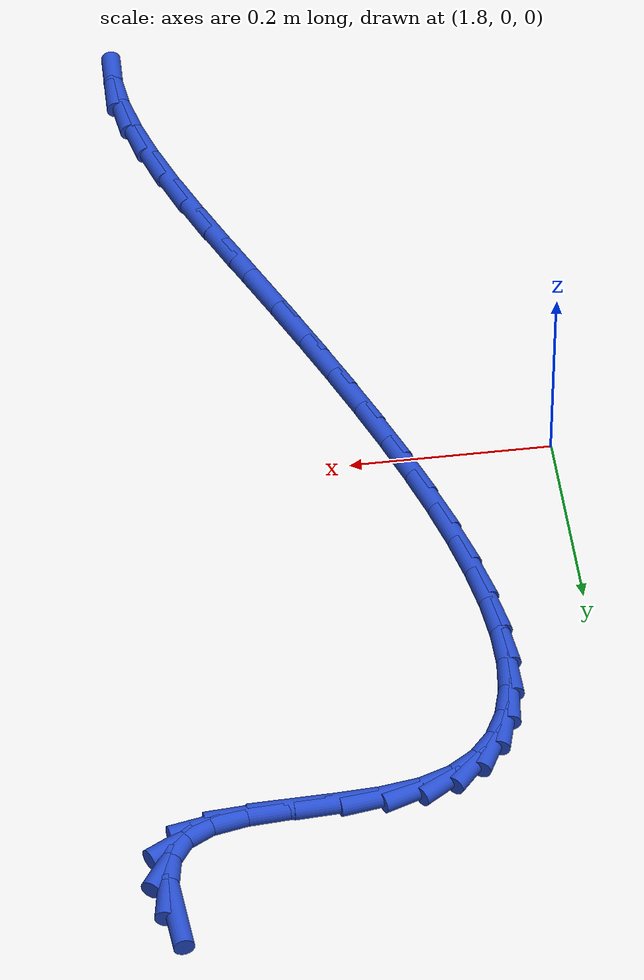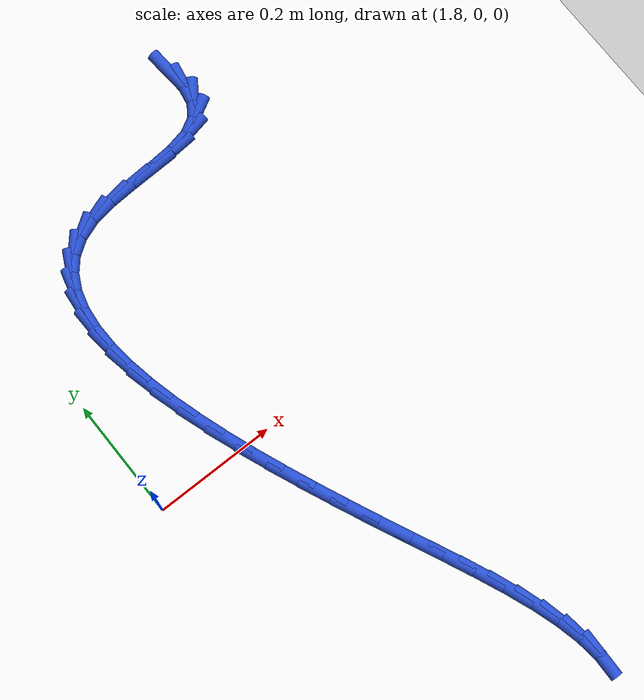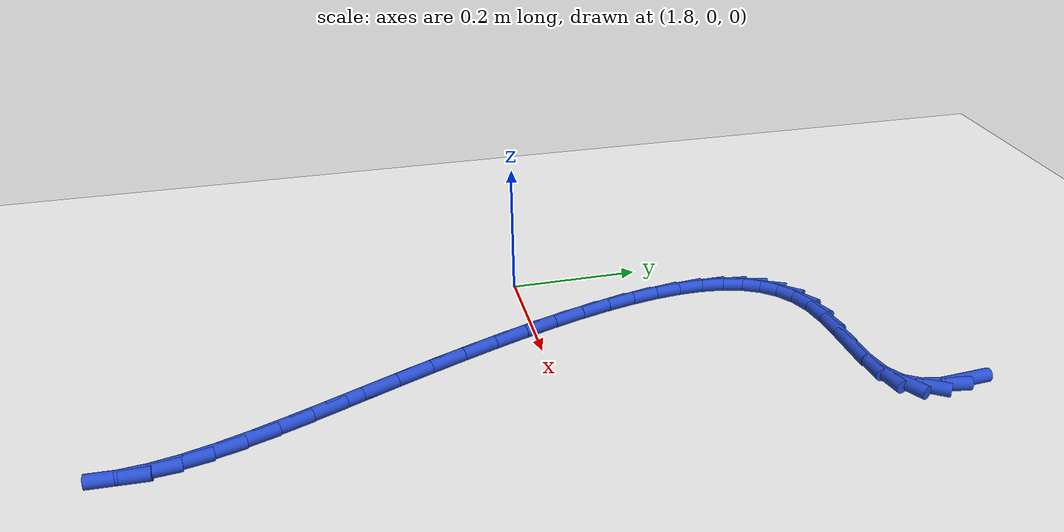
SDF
<sdf version="1.6">
 <world name="default">
  <model name="ground_plane">
   <static>1</static>
   <link name="link">
    <collision name="collision">
     <geometry><plane><normal>0 0 1</normal><size>100 100</size></plane></geometry>
     <surface><friction><ode><mu>100</mu><mu2>50</mu2></ode></friction></surface>
    </collision>
    <visual name="visual">
     <cast_shadows>0</cast_shadows>
     <geometry><plane><normal>0 0 1</normal><size>100 100</size></plane></geometry>
     <material>
      <script><uri>file://media/materials/scripts/gazebo.material</uri><name>Gazebo/WhiteGlow</name></script>
     </material>
    </visual>
   </link>
  </model>
  <model name="line">
   <link name="link_89">
    <pose>2.2319954554988297 0.5465699969368176 0.01 0 1.57 -1.4904532015679872</pose>
    <collision name="collision">
     <geometry><cylinder><radius>0.01</radius><length>0.08</length></cylinder></geometry>
    </collision>
    <visual name="visual">
     <material>
      <script><name>Gazebo/Blue</name><uri>file://media/materials/scripts/gazebo.material</uri></script>
     </material>
     <geometry><cylinder><radius>0.01</radius><length>0.08</length></cylinder></geometry>
    </visual>
   </link>
   <link name="link_90">
    <pose>2.2347788851365133 0.5120002932850212 0.01 0 1.57 1.3860549257990797</pose>
    <collision name="collision">
     <geometry><cylinder><radius>0.01</radius><length>0.08</length></cylinder></geometry>
    </collision>
    <visual name="visual">
     <material>
      <script><name>Gazebo/Blue</name><uri>file://media/materials/scripts/gazebo.material</uri></script>
     </material>
     <geometry><cylinder><radius>0.01</radius><length>0.08</length></cylinder></geometry>
    </visual>
   </link>
   <link name="link_91">
    <pose>2.229386555005725 0.48314458238271357 0.01 0 1.57 0.9763017231322304</pose>
    <collision name="collision">
     <geometry><cylinder><radius>0.01</radius><length>0.08</length></cylinder></geometry>
    </collision>
    <visual name="visual">
     <material>
      <script><name>Gazebo/Blue</name><uri>file://media/materials/scripts/gazebo.material</uri></script>
     </material>
     <geometry><cylinder><radius>0.01</radius><length>0.08</length></cylinder></geometry>
    </visual>
   </link>
   <link name="link_92">
    <pose>2.214528362681499 0.4611677678679574 0.01 0 1.57 0.5049259371415193</pose>
    <collision name="collision">
     <geometry><cylinder><radius>0.01</radius><length>0.08</length></cylinder></geometry>
    </collision>
    <visual name="visual">
     <material>
      <script><name>Gazebo/Blue</name><uri>file://media/materials/scripts/gazebo.material</uri></script>
     </material>
     <geometry><cylinder><radius>0.01</radius><length>0.08</length></cylinder></geometry>
    </visual>
   </link>
   <link name="link_93">
    <pose>2.189077302475857 0.4471005630897749 0.01 0 1.57 0.2040438548238577</pose>
    <collision name="collision">
     <geometry><cylinder><radius>0.01</radius><length>0.08</length></cylinder></geometry>
    </collision>
    <visual name="visual">
     <material>
      <script><name>Gazebo/Blue</name><uri>file://media/materials/scripts/gazebo.material</uri></script>
     </material>
     <geometry><cylinder><radius>0.01</radius><length>0.08</length></cylinder></geometry>
    </visual>
   </link>
   <link name="link_94">
    <pose>2.1543970823412826 0.43992440935466814 0.01 0 1.57 0.07136806453644225</pose>
    <collision name="collision">
     <geometry><cylinder><radius>0.01</radius><length>0.08</length></cylinder></geometry>
    </collision>
    <visual name="visual">
     <material>
      <script><name>Gazebo/Blue</name><uri>file://media/materials/scripts/gazebo.material</uri></script>
     </material>
     <geometry><cylinder><radius>0.01</radius><length>0.08</length></cylinder></geometry>
    </visual>
   </link>
   <link name="link_95">
    <pose>2.1137948241326714 0.43702177500309786 0.01 0 1.57 0.02985365302444712</pose>
    <collision name="collision">
     <geometry><cylinder><radius>0.01</radius><length>0.08</length></cylinder></geometry>
    </collision>
    <visual name="visual">
     <material>
      <script><name>Gazebo/Blue</name><uri>file://media/materials/scripts/gazebo.material</uri></script>
     </material>
     <geometry><cylinder><radius>0.01</radius><length>0.08</length></cylinder></geometry>
    </visual>
   </link>
   <link name="link_96">
    <pose>2.0706291696561734 0.43573273956212205 0.01 0 1.57 0.05506192789850153</pose>
    <collision name="collision">
     <geometry><cylinder><radius>0.01</radius><length>0.08</length></cylinder></geometry>
    </collision>
    <visual name="visual">
     <material>
      <script><name>Gazebo/Blue</name><uri>file://media/materials/scripts/gazebo.material</uri></script>
     </material>
     <geometry><cylinder><radius>0.01</radius><length>0.08</length></cylinder></geometry>
    </visual>
   </link>
   <link name="link_97">
    <pose>2.028258760717943 0.4333973825587986 0.01 0 1.57 0.15669649025078525</pose>
    <collision name="collision">
     <geometry><cylinder><radius>0.01</radius><length>0.08</length></cylinder></geometry>
    </collision>
    <visual name="visual">
     <material>
      <script><name>Gazebo/Blue</name><uri>file://media/materials/scripts/gazebo.material</uri></script>
     </material>
     <geometry><cylinder><radius>0.01</radius><length>0.08</length></cylinder></geometry>
    </visual>
   </link>
   <link name="link_98">
    <pose>1.9900384261044752 0.4273588865234727 0.01 0 1.57 0.3494890032617733</pose>
    <collision name="collision">
     <geometry><cylinder><radius>0.01</radius><length>0.08</length></cylinder></geometry>
    </collision>
    <visual name="visual">
     <material>
      <script><name>Gazebo/Blue</name><uri>file://media/materials/scripts/gazebo.material</uri></script>
     </material>
     <geometry><cylinder><radius>0.01</radius><length>0.08</length></cylinder></geometry>
    </visual>
   </link>
   <link name="link_99">
    <pose>1.9583009386429204 0.41579217451979245 0.01 0 1.57 0.5905241538581865</pose>
    <collision name="collision">
     <geometry><cylinder><radius>0.01</radius><length>0.08</length></cylinder></geometry>
    </collision>
    <visual name="visual">
     <material>
      <script><name>Gazebo/Blue</name><uri>file://media/materials/scripts/gazebo.material</uri></script>
     </material>
     <geometry><cylinder><radius>0.01</radius><length>0.08</length></cylinder></geometry>
    </visual>
   </link>
   <link name="link_100">
    <pose>1.9329836016086293 0.39882158256115524 0.01 0 1.57 0.8499636379364107</pose>
    <collision name="collision">
     <geometry><cylinder><radius>0.01</radius><length>0.08</length></cylinder></geometry>
    </collision>
    <visual name="visual">
     <material>
      <script><name>Gazebo/Blue</name><uri>file://media/materials/scripts/gazebo.material</uri></script>
     </material>
     <geometry><cylinder><radius>0.01</radius><length>0.08</length></cylinder></geometry>
    </visual>
   </link>
   <link name="link_101">
    <pose>1.9136809676713955 0.3768503742175672 0.01 0 1.57 1.0949064885580062</pose>
    <collision name="collision">
     <geometry><cylinder><radius>0.01</radius><length>0.08</length></cylinder></geometry>
    </collision>
    <visual name="visual">
     <material>
      <script><name>Gazebo/Blue</name><uri>file://media/materials/scripts/gazebo.material</uri></script>
     </material>
     <geometry><cylinder><radius>0.01</radius><length>0.08</length></cylinder></geometry>
    </visual>
   </link>
   <link name="link_102">
    <pose>1.8999875895010114 0.35028181305903466 0.01 0 1.57 1.3015285051576626</pose>
    <collision name="collision">
     <geometry><cylinder><radius>0.01</radius><length>0.08</length></cylinder></geometry>
    </collision>
    <visual name="visual">
     <material>
      <script><name>Gazebo/Blue</name><uri>file://media/materials/scripts/gazebo.material</uri></script>
     </material>
     <geometry><cylinder><radius>0.01</radius><length>0.08</length></cylinder></geometry>
    </visual>
   </link>
   <link name="link_103">
    <pose>1.8914980197672697 0.3195191626555638 0.01 0 1.57 1.4643739545341241</pose>
    <collision name="collision">
     <geometry><cylinder><radius>0.01</radius><length>0.08</length></cylinder></geometry>
    </collision>
    <visual name="visual">
     <material>
      <script><name>Gazebo/Blue</name><uri>file://media/materials/scripts/gazebo.material</uri></script>
     </material>
     <geometry><cylinder><radius>0.01</radius><length>0.08</length></cylinder></geometry>
    </visual>
   </link>
   <link name="link_104">
    <pose>1.8878068111399626 0.28496568657716054 0.01 0 1.57 -1.5523038133422449</pose>
    <collision name="collision">
     <geometry><cylinder><radius>0.01</radius><length>0.08</length></cylinder></geometry>
    </collision>
    <visual name="visual">
     <material>
      <script><name>Gazebo/Blue</name><uri>file://media/materials/scripts/gazebo.material</uri></script>
     </material>
     <geometry><cylinder><radius>0.01</radius><length>0.08</length></cylinder></geometry>
    </visual>
   </link>
   <link name="link_105">
    <pose>1.8885085162888833 0.24702464839383131 0.01 0 1.57 -1.4567151277508343</pose>
    <collision name="collision">
     <geometry><cylinder><radius>0.01</radius><length>0.08</length></cylinder></geometry>
    </collision>
    <visual name="visual">
     <material>
      <script><name>Gazebo/Blue</name><uri>file://media/materials/scripts/gazebo.material</uri></script>
     </material>
     <geometry><cylinder><radius>0.01</radius><length>0.08</length></cylinder></geometry>
    </visual>
   </link>
   <link name="link_106">
    <pose>1.8931976878838237 0.2060993116755811 0.01 0 1.57 -1.3829239028375429</pose>
    <collision name="collision">
     <geometry><cylinder><radius>0.01</radius><length>0.08</length></cylinder></geometry>
    </collision>
    <visual name="visual">
     <material>
      <script><name>Gazebo/Blue</name><uri>file://media/materials/scripts/gazebo.material</uri></script>
     </material>
     <geometry><cylinder><radius>0.01</radius><length>0.08</length></cylinder></geometry>
    </visual>
   </link>
   <link name="link_107">
    <pose>1.901468878594577 0.16259293999241806 0.01 0 1.57 -1.325267120305898</pose>
    <collision name="collision">
     <geometry><cylinder><radius>0.01</radius><length>0.08</length></cylinder></geometry>
    </collision>
    <visual name="visual">
     <material>
      <script><name>Gazebo/Blue</name><uri>file://media/materials/scripts/gazebo.material</uri></script>
     </material>
     <geometry><cylinder><radius>0.01</radius><length>0.08</length></cylinder></geometry>
    </visual>
   </link>
   <link name="link_108">
    <pose>1.9129166410909348 0.11690879691434727 0.01 0 1.57 -1.2797012252191111</pose>
    <collision name="collision">
     <geometry><cylinder><radius>0.01</radius><length>0.08</length></cylinder></geometry>
    </collision>
    <visual name="visual">
     <material>
      <script><name>Gazebo/Blue</name><uri>file://media/materials/scripts/gazebo.material</uri></script>
     </material>
     <geometry><cylinder><radius>0.01</radius><length>0.08</length></cylinder></geometry>
    </visual>
   </link>
   <link name="link_109">
    <pose>1.927135528042691 0.069450146011375 0.01 0 1.57 -1.243380946750623</pose>
    <collision name="collision">
     <geometry><cylinder><radius>0.01</radius><length>0.08</length></cylinder></geometry>
    </collision>
    <visual name="visual">
     <material>
      <script><name>Gazebo/Blue</name><uri>file://media/materials/scripts/gazebo.material</uri></script>
     </material>
     <geometry><cylinder><radius>0.01</radius><length>0.08</length></cylinder></geometry>
    </visual>
   </link>
   <link name="link_110">
    <pose>1.9437200921196367 0.020620250853507327 0.01 0 1.57 -1.2143059100676004</pose>
    <collision name="collision">
     <geometry><cylinder><radius>0.01</radius><length>0.08</length></cylinder></geometry>
    </collision>
    <visual name="visual">
     <material>
      <script><name>Gazebo/Blue</name><uri>file://media/materials/scripts/gazebo.material</uri></script>
     </material>
     <geometry><cylinder><radius>0.01</radius><length>0.08</length></cylinder></geometry>
    </visual>
   </link>
   <link name="link_111">
    <pose>1.9622648859915657 -0.029177624989249515 0.01 0 1.57 -1.1910683563727253</pose>
    <collision name="collision">
     <geometry><cylinder><radius>0.01</radius><length>0.08</length></cylinder></geometry>
    </collision>
    <visual name="visual">
     <material>
      <script><name>Gazebo/Blue</name><uri>file://media/materials/scripts/gazebo.material</uri></script>
     </material>
     <geometry><cylinder><radius>0.01</radius><length>0.08</length></cylinder></geometry>
    </visual>
   </link>
   <link name="link_112">
    <pose>1.9823644623282703 -0.07954021794689063 0.01 0 1.57 -1.1726836822593218</pose>
    <collision name="collision">
     <geometry><cylinder><radius>0.01</radius><length>0.08</length></cylinder></geometry>
    </collision>
    <visual name="visual">
     <material>
      <script><name>Gazebo/Blue</name><uri>file://media/materials/scripts/gazebo.material</uri></script>
     </material>
     <geometry><cylinder><radius>0.01</radius><length>0.08</length></cylinder></geometry>
    </visual>
   </link>
   <link name="link_113">
    <pose>2.0036133737995425 -0.13006426444940747 0.01 0 1.57 -1.1584806898021986</pose>
    <collision name="collision">
     <geometry><cylinder><radius>0.01</radius><length>0.08</length></cylinder></geometry>
    </collision>
    <visual name="visual">
     <material>
      <script><name>Gazebo/Blue</name><uri>file://media/materials/scripts/gazebo.material</uri></script>
     </material>
     <geometry><cylinder><radius>0.01</radius><length>0.08</length></cylinder></geometry>
    </visual>
   </link>
   <link name="link_114">
    <pose>2.025606173075175 -0.1803465009267951 0.01 0 1.57 -1.1480342735790494</pose>
    <collision name="collision">
     <geometry><cylinder><radius>0.01</radius><length>0.08</length></cylinder></geometry>
    </collision>
    <visual name="visual">
     <material>
      <script><name>Gazebo/Blue</name><uri>file://media/materials/scripts/gazebo.material</uri></script>
     </material>
     <geometry><cylinder><radius>0.01</radius><length>0.08</length></cylinder></geometry>
    </visual>
   </link>
   <link name="link_115">
    <pose>2.0479374128249606 -0.22998366380904733 0.01 0 1.57 -1.1411770297406219</pose>
    <collision name="collision">
     <geometry><cylinder><radius>0.01</radius><length>0.08</length></cylinder></geometry>
    </collision>
    <visual name="visual">
     <material>
      <script><name>Gazebo/Blue</name><uri>file://media/materials/scripts/gazebo.material</uri></script>
     </material>
     <geometry><cylinder><radius>0.01</radius><length>0.08</length></cylinder></geometry>
    </visual>
   </link>
   <link name="link_116">
    <pose>2.0701997211006367 -0.27857431426374096 0.01 0 1.57 -1.1404068437084662</pose>
    <collision name="collision">
     <geometry><cylinder><radius>0.01</radius><length>0.08</length></cylinder></geometry>
    </collision>
    <visual name="visual">
     <material>
      <script><name>Gazebo/Blue</name><uri>file://media/materials/scripts/gazebo.material</uri></script>
     </material>
     <geometry><cylinder><radius>0.01</radius><length>0.08</length></cylinder></geometry>
    </visual>
   </link>
   <link name="link_117">
    <pose>2.0918859921608073 -0.3258115714410322 0.01 0 1.57 -1.150036817771369</pose>
    <collision name="collision">
     <geometry><cylinder><radius>0.01</radius><length>0.08</length></cylinder></geometry>
    </collision>
    <visual name="visual">
     <material>
      <script><name>Gazebo/Blue</name><uri>file://media/materials/scripts/gazebo.material</uri></script>
     </material>
     <geometry><cylinder><radius>0.01</radius><length>0.08</length></cylinder></geometry>
    </visual>
   </link>
   <link name="link_118">
    <pose>2.112342963696328 -0.37152712608003713 0.01 0 1.57 -1.171867779265608</pose>
    <collision name="collision">
     <geometry><cylinder><radius>0.01</radius><length>0.08</length></cylinder></geometry>
    </collision>
    <visual name="visual">
     <material>
      <script><name>Gazebo/Blue</name><uri>file://media/materials/scripts/gazebo.material</uri></script>
     </material>
     <geometry><cylinder><radius>0.01</radius><length>0.08</length></cylinder></geometry>
    </visual>
   </link>
   <link name="link_119">
    <pose>2.1309057370171605 -0.4155637014161533 0.01 0 1.57 -1.2083213083098052</pose>
    <collision name="collision">
     <geometry><cylinder><radius>0.01</radius><length>0.08</length></cylinder></geometry>
    </collision>
    <visual name="visual">
     <material>
      <script><name>Gazebo/Blue</name><uri>file://media/materials/scripts/gazebo.material</uri></script>
     </material>
     <geometry><cylinder><radius>0.01</radius><length>0.08</length></cylinder></geometry>
    </visual>
   </link>
   <link name="link_120">
    <pose>2.1469094134332685 -0.4577640206847754 0.01 0 1.57 -1.2630459326705654</pose>
    <collision name="collision">
     <geometry><cylinder><radius>0.01</radius><length>0.08</length></cylinder></geometry>
    </collision>
    <visual name="visual">
     <material>
      <script><name>Gazebo/Blue</name><uri>file://media/materials/scripts/gazebo.material</uri></script>
     </material>
     <geometry><cylinder><radius>0.01</radius><length>0.08</length></cylinder></geometry>
    </visual>
   </link>
   <link name="link_121">
    <pose>2.1596890942546123 -0.49797080712130054 0.01 0 1.57 -1.3412888273348609</pose>
    <collision name="collision">
     <geometry><cylinder><radius>0.01</radius><length>0.08</length></cylinder></geometry>
    </collision>
    <visual name="visual">
     <material>
      <script><name>Gazebo/Blue</name><uri>file://media/materials/scripts/gazebo.material</uri></script>
     </material>
     <geometry><cylinder><radius>0.01</radius><length>0.08</length></cylinder></geometry>
    </visual>
   </link>
   <link name="link_122">
    <pose>2.1685798807911567 -0.5360267839611256 0.01 0 1.57 -1.450064702859658</pose>
    <collision name="collision">
     <geometry><cylinder><radius>0.01</radius><length>0.08</length></cylinder></geometry>
    </collision>
    <visual name="visual">
     <material>
      <script><name>Gazebo/Blue</name><uri>file://media/materials/scripts/gazebo.material</uri></script>
     </material>
     <geometry><cylinder><radius>0.01</radius><length>0.08</length></cylinder></geometry>
    </visual>
   </link>
   <link name="link_123">
    <pose>2.172916874352863 -0.5717746744396468 0.01 0 1.57 1.5443112006811386</pose>
    <collision name="collision">
     <geometry><cylinder><radius>0.01</radius><length>0.08</length></cylinder></geometry>
    </collision>
    <visual name="visual">
     <material>
      <script><name>Gazebo/Blue</name><uri>file://media/materials/scripts/gazebo.material</uri></script>
     </material>
     <geometry><cylinder><radius>0.01</radius><length>0.08</length></cylinder></geometry>
    </visual>
   </link>
  </model>
 </world>
</sdf>
